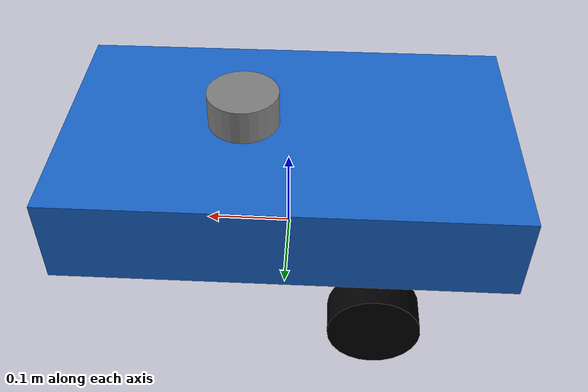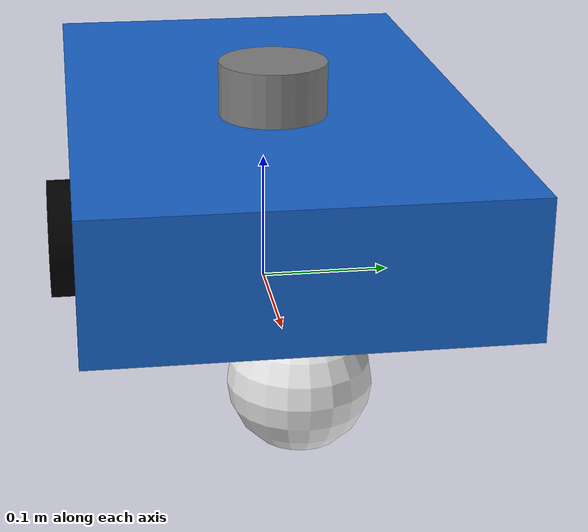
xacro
<?xml version="1.0"?>
<robot xmlns:xacro="http://www.ros.org/wiki/xacro" name="locus_robot">

  <xacro:property name="chassis_length" value="0.50"/>
  <xacro:property name="chassis_width"  value="0.30"/>
  <xacro:property name="chassis_height" value="0.10"/>
  <xacro:property name="chassis_mass"   value="1.0"/>

  <xacro:property name="wheel_radius"   value="0.05"/>
  <xacro:property name="wheel_width"    value="0.04"/>
  <xacro:property name="wheel_mass"     value="0.05"/>

  <!-- track_width = distance between left and right wheel centers -->
  <xacro:property name="track_width"    value="0.30"/>

  <!-- caster radius slightly less than wheel so robot sits level -->
  <xacro:property name="caster_radius"  value="0.05"/>
  <xacro:property name="caster_mass"    value="0.025"/>

  <!-- =========================================================
       INERTIA MACROS
       ========================================================= -->

  <xacro:macro name="box_inertia" params="m w h d">
    <inertial>
      <origin xyz="0 0 0" rpy="0 0 0"/>
      <mass value="${m}"/>
      <inertia
        ixx="${(m/12)*(h*h + d*d)}" ixy="0" ixz="0"
        iyy="${(m/12)*(w*w + d*d)}" iyz="0"
        izz="${(m/12)*(w*w + h*h)}"/>
    </inertial>
  </xacro:macro>

  <xacro:macro name="cylinder_inertia" params="m r h">
    <inertial>
      <origin xyz="0 0 0" rpy="0 0 0"/>
      <mass value="${m}"/>
      <inertia
        ixx="${(m/12)*(3*r*r + h*h)}" ixy="0" ixz="0"
        iyy="${(m/12)*(3*r*r + h*h)}" iyz="0"
        izz="${(m/2)*r*r}"/>
    </inertial>
  </xacro:macro>

  <xacro:macro name="sphere_inertia" params="m r">
    <inertial>
      <origin xyz="0 0 0" rpy="0 0 0"/>
      <mass value="${m}"/>
      <inertia
        ixx="${(2/5)*m*r*r}" ixy="0" ixz="0"
        iyy="${(2/5)*m*r*r}" iyz="0"
        izz="${(2/5)*m*r*r}"/>
    </inertial>
  </xacro:macro>

  <!-- =========================================================
       MATERIALS
       ========================================================= -->

  <material name="blue">  <color rgba="0.1 0.4 0.8 1"/></material>
  <material name="black"> <color rgba="0.0 0.0 0.0 1"/></material>
  <material name="grey">  <color rgba="0.5 0.5 0.5 1"/></material>
  <material name="white"> <color rgba="0.9 0.9 0.9 1"/></material>

  <!-- =========================================================
       BASE FOOTPRINT
       ========================================================= -->

  <link name="base_footprint"/>

  <joint name="base_footprint_joint" type="fixed">
    <parent link="base_footprint"/>
    <child  link="base_link"/>
    <origin xyz="0 0 ${wheel_radius}" rpy="0 0 0"/>
  </joint>

  <!-- =========================================================
       BASE LINK
       ========================================================= -->

  <link name="base_link">
    <visual>
      <origin xyz="0 0 ${chassis_height/2}" rpy="0 0 0"/>
      <geometry>
        <box size="${chassis_length} ${chassis_width} ${chassis_height}"/>
      </geometry>
      <material name="blue"/>
    </visual>
    <collision>
      <origin xyz="0 0 ${chassis_height/2}" rpy="0 0 0"/>
      <geometry>
        <box size="${chassis_length} ${chassis_width} ${chassis_height}"/>
      </geometry>
    </collision>
    <xacro:box_inertia
      m="${chassis_mass}"
      w="${chassis_width}"
      h="${chassis_height}"
      d="${chassis_length}"/>
  </link>

  <!-- =========================================================
       LEFT DRIVE WHEEL
       ========================================================= -->

  <link name="left_wheel">
    <visual>
      <origin xyz="0 0 0" rpy="${pi/2} 0 0"/>
      <geometry>
        <cylinder radius="${wheel_radius}" length="${wheel_width}"/>
      </geometry>
      <material name="black"/>
    </visual>
    <collision>
      <origin xyz="0 0 0" rpy="${pi/2} 0 0"/>
      <geometry>
        <cylinder radius="${wheel_radius}" length="${wheel_width}"/>
      </geometry>
    </collision>
    <xacro:cylinder_inertia
      m="${wheel_mass}"
      r="${wheel_radius}"
      h="${wheel_width}"/>
  </link>

  <joint name="left_wheel_joint" type="continuous">
    <parent link="base_link"/>
    <child  link="left_wheel"/>
    <origin xyz="-0.10 ${track_width/2} ${-wheel_radius}" rpy="0 0 0"/>
    <axis xyz="0 1 0"/>
    <limit effort="1.0" velocity="10.0"/>
    <dynamics damping="0.1" friction="0.1"/>
  </joint>

  <!-- =========================================================
       RIGHT DRIVE WHEEL
       ========================================================= -->

  <link name="right_wheel">
    <visual>
      <origin xyz="0 0 0" rpy="${pi/2} 0 0"/>
      <geometry>
        <cylinder radius="${wheel_radius}" length="${wheel_width}"/>
      </geometry>
      <material name="black"/>
    </visual>
    <collision>
      <origin xyz="0 0 0" rpy="${pi/2} 0 0"/>
      <geometry>
        <cylinder radius="${wheel_radius}" length="${wheel_width}"/>
      </geometry>
    </collision>
    <xacro:cylinder_inertia
      m="${wheel_mass}"
      r="${wheel_radius}"
      h="${wheel_width}"/>
  </link>

  <joint name="right_wheel_joint" type="continuous">
    <parent link="base_link"/>
    <child  link="right_wheel"/>
    <origin xyz="-0.10 ${-track_width/2} ${-wheel_radius}" rpy="0 0 0"/>
    <axis xyz="0 1 0"/>
    <limit effort="1.0" velocity="10.0"/>
    <dynamics damping="0.1" friction="0.1"/>
  </joint>

  <link name="caster_wheel">
    <visual>
      <origin xyz="0 0 0" rpy="0 0 0"/>
      <geometry>
        <sphere radius="${caster_radius}"/>
      </geometry>
      <material name="white"/>
    </visual>
    <collision>
      <origin xyz="0 0 0" rpy="0 0 0"/>
      <geometry>
        <sphere radius="${caster_radius}"/>
      </geometry>
    </collision>
    <xacro:sphere_inertia m="${caster_mass}" r="${caster_radius}"/>
  </link>

  <joint name="caster_wheel_joint" type="fixed">
    <parent link="base_link"/>
    <child  link="caster_wheel"/>
    <!-- front of chassis, dropped so sphere touches ground -->
    <origin xyz="0.18 0 ${-caster_radius}" rpy="0 0 0"/>
  </joint>

  <!-- =========================================================
       LIDAR LINK
       ========================================================= -->

  <link name="lidar_link">
    <visual>
      <origin xyz="0 0 0" rpy="0 0 0"/>
      <geometry>
        <cylinder radius="0.04" length="0.04"/>
      </geometry>
      <material name="grey"/>
    </visual>
    <!-- no collision block — prevents lidar from hitting itself -->
    <inertial>
      <mass value="0.1"/>
      <inertia ixx="0.001" ixy="0" ixz="0"
               iyy="0.001" iyz="0" izz="0.001"/>
    </inertial>
  </link>

  <joint name="lidar_joint" type="fixed">
    <parent link="base_link"/>
    <child  link="lidar_link"/>
    <origin xyz="0.05 0 ${chassis_height + 0.02}" rpy="0 0 0"/>
  </joint>

  <!-- =========================================================
       IMU LINK
       ========================================================= -->

  <link name="imu_link">
    <visual>
      <origin xyz="0 0 0" rpy="0 0 0"/>
      <geometry>
        <box size="0.03 0.03 0.01"/>
      </geometry>
      <material name="grey"/>
    </visual>
    <!-- no collision block -->
    <inertial>
      <mass value="0.01"/>
      <inertia ixx="0.0001" ixy="0" ixz="0"
               iyy="0.0001" iyz="0" izz="0.0001"/>
    </inertial>
  </link>

  <joint name="imu_joint" type="fixed">
    <parent link="base_link"/>
    <child  link="imu_link"/>
    <origin xyz="0 0 ${chassis_height/2}" rpy="0 0 0"/>
  </joint>

  <!-- =========================================================
       ROS2 CONTROL — only 2 drive wheels
       ========================================================= -->

  <ros2_control name="locus_robot" type="system">
    <hardware>
      <plugin>gz_ros2_control/GazeboSimSystem</plugin>
    </hardware>

    <joint name="left_wheel_joint">
      <command_interface name="velocity">
        <param name="min">-10</param>
        <param name="max">10</param>
      </command_interface>
      <state_interface name="velocity"/>
      <state_interface name="position"/>
    </joint>

    <joint name="right_wheel_joint">
      <command_interface name="velocity">
        <param name="min">-10</param>
        <param name="max">10</param>
      </command_interface>
      <state_interface name="velocity"/>
      <state_interface name="position"/>
    </joint>

  </ros2_control>

  <xacro:include filename="$(find locus_description)/urdf/locus_gazebo.xacro"/>

</robot>
